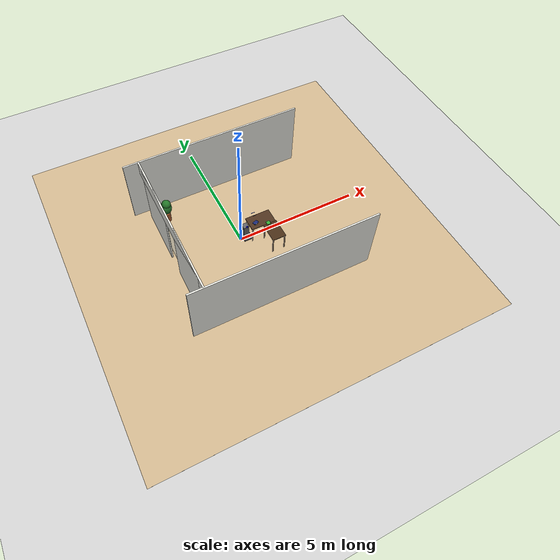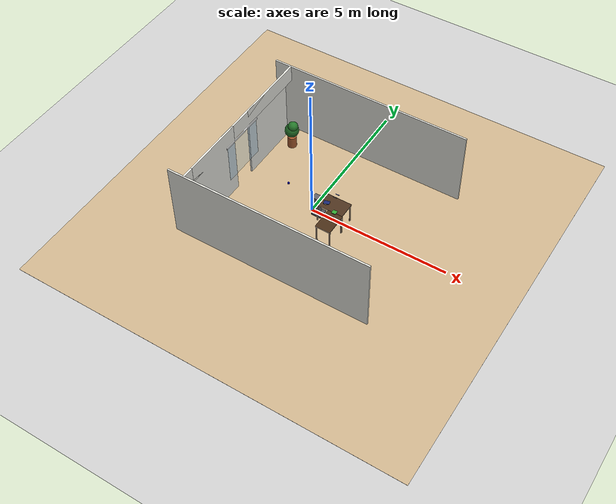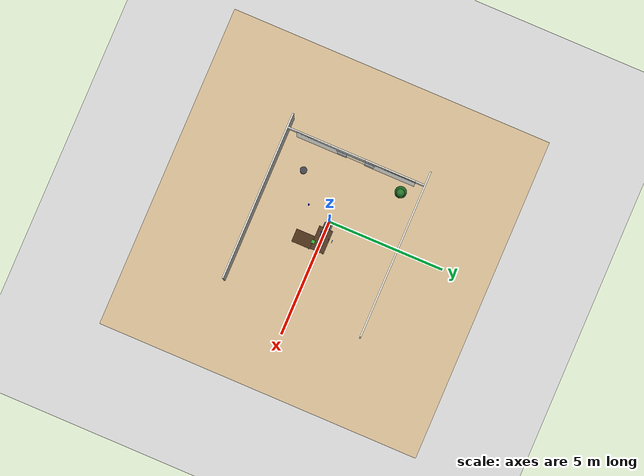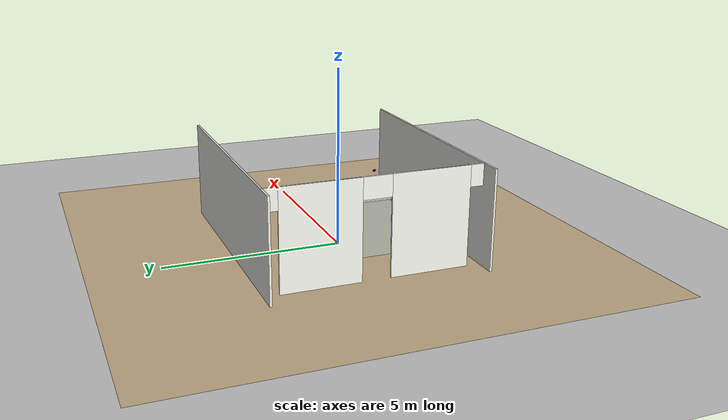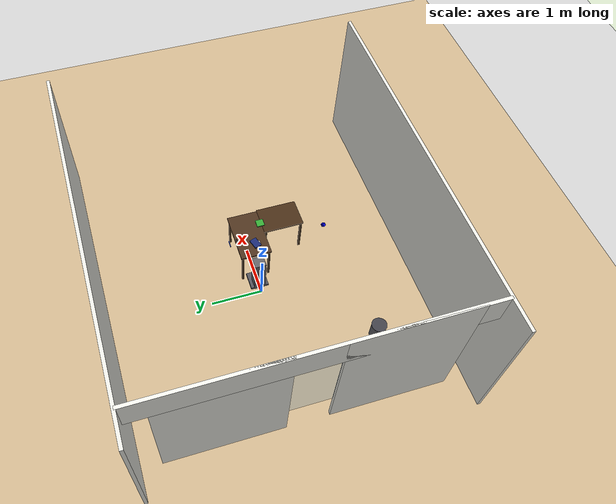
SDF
<sdf version="1.6">
 <world name="office">
  <include><uri>model://sun</uri></include>
  <include><uri>model://ground_plane</uri></include>
  <light name="office_fill" type="point">
   <pose>0.5 0.0 2.4 0 0 0</pose>
   <diffuse>0.38 0.36 0.32 1</diffuse>
   <specular>0.05 0.05 0.05 1</specular>
   <attenuation>
    <range>8</range>
    <constant>0.6</constant>
    <linear>0.05</linear>
    <quadratic>0.002</quadratic>
   </attenuation>
   <cast_shadows>false</cast_shadows>
  </light>
  <plugin name="model_attachment" filename="libboeing_gazebo_model_attachment_plugin_lib.so"/>
  <plugin name="gazebo_ros_state" filename="libgazebo_ros_state.so">
   <ros><namespace>/gazebo</namespace></ros>
   <update_rate>10.0</update_rate>
  </plugin>
  <physics name="default" type="ode">
   <max_step_size>0.001</max_step_size>
   <real_time_factor>1.0</real_time_factor>
   <ode><solver><type>quick</type><iters>50</iters><sor>1.3</sor></solver></ode>
  </physics>
  <model name="floor">
   <static>true</static>
   <pose>0.5 0 0.001 0 0 0</pose>
   <link name="s">
    <visual name="v">
     <geometry><box><size>14 14 0.002</size></box></geometry>
     <material><ambient>0.72 0.62 0.48 1</ambient><diffuse>0.80 0.70 0.55 1</diffuse></material>
    </visual>
   </link>
  </model>
  <model name="room">
   <static>true</static>
   <pose>0.5 0.0 0.0 0 0 0</pose>
   <link name="wback_l">
    <pose>-3.2 -1.5 1.4 0 0 0</pose>
    <collision name="c"><geometry><box><size>0.06 2.2 2.8</size></box></geometry></collision>
    <visual name="v">
     <geometry><box><size>0.06 2.2 2.8</size></box></geometry>
     <material><ambient>0.90 0.90 0.87 1</ambient><diffuse>0.93 0.93 0.90 1</diffuse></material>
    </visual>
   </link>
   <link name="wback_r">
    <pose>-3.2  1.5 1.4 0 0 0</pose>
    <collision name="c"><geometry><box><size>0.06 2.2 2.8</size></box></geometry></collision>
    <visual name="v">
     <geometry><box><size>0.06 2.2 2.8</size></box></geometry>
     <material><ambient>0.90 0.90 0.87 1</ambient><diffuse>0.93 0.93 0.90 1</diffuse></material>
    </visual>
   </link>
   <link name="wback_top">
    <pose>-3.2 0.0 2.50 0 0 0</pose>
    <collision name="c"><geometry><box><size>0.06 6.0 0.60</size></box></geometry></collision>
    <visual name="v">
     <geometry><box><size>0.06 6.0 0.60</size></box></geometry>
     <material><ambient>0.90 0.90 0.87 1</ambient><diffuse>0.93 0.93 0.90 1</diffuse></material>
    </visual>
   </link>
   <link name="window">
    <pose>-3.17 0.0 1.40 0 0 0</pose>
    <visual name="v">
     <geometry><box><size>0.02 1.60 1.50</size></box></geometry>
     <material><ambient>0.55 0.78 0.95 0.30</ambient><diffuse>0.60 0.82 0.98 0.30</diffuse></material>
    </visual>
   </link>
   <link name="winbar">
    <pose>-3.16 0.0 2.15 0 0 0</pose>
    <visual name="v">
     <geometry><box><size>0.03 1.70 0.06</size></box></geometry>
     <material><ambient>0.88 0.88 0.88 1</ambient><diffuse>0.92 0.92 0.92 1</diffuse></material>
    </visual>
   </link>
   <link name="wall_left">
    <pose>-0.2  3.0 1.4 0 0 0</pose>
    <collision name="c"><geometry><box><size>7.2 0.06 2.8</size></box></geometry></collision>
    <visual name="v">
     <geometry><box><size>7.2 0.06 2.8</size></box></geometry>
     <material><ambient>0.88 0.88 0.85 1</ambient><diffuse>0.91 0.91 0.88 1</diffuse></material>
    </visual>
   </link>
   <link name="wall_right">
    <pose>-0.2 -3.0 1.4 0 0 0</pose>
    <collision name="c"><geometry><box><size>7.2 0.06 2.8</size></box></geometry></collision>
    <visual name="v">
     <geometry><box><size>7.2 0.06 2.8</size></box></geometry>
     <material><ambient>0.88 0.88 0.85 1</ambient><diffuse>0.91 0.91 0.88 1</diffuse></material>
    </visual>
   </link>
  </model>
  <model name="robot_pedestal">
   <static>true</static>
   <pose>0.2 0.0 0.0 0 0 0</pose>
   <link name="column">
    <pose>0 0 0.385 0 0 0</pose>
    <collision name="c"><geometry><box><size>0.22 0.22 0.77</size></box></geometry></collision>
    <visual name="v">
     <geometry><box><size>0.22 0.22 0.77</size></box></geometry>
     <material>
      <ambient>0.30 0.30 0.32 1</ambient>
      <diffuse>0.38 0.38 0.40 1</diffuse>
      <specular>0.7 0.7 0.7 1</specular>
     </material>
    </visual>
   </link>
   <link name="base">
    <pose>0.07 0 0.025 0 0 0</pose>
    <collision name="c"><geometry><box><size>0.35 0.35 0.05</size></box></geometry></collision>
    <visual name="v">
     <geometry><box><size>0.35 0.35 0.05</size></box></geometry>
     <material><ambient>0.25 0.25 0.27 1</ambient><diffuse>0.32 0.32 0.35 1</diffuse></material>
    </visual>
   </link>
  </model>
  <model name="table">
   <static>true</static>
   <pose>0.85 0.0 0.0 0 0 0</pose>
   <link name="top">
    <pose>0 0 0.755 0 0 0</pose>
    <collision name="col">
     <geometry><box><size>1.00 0.60 0.03</size></box></geometry>
     <surface><friction><ode><mu>0.7</mu><mu2>0.7</mu2></ode></friction></surface>
    </collision>
    <visual name="vis">
     <geometry><box><size>1.00 0.60 0.03</size></box></geometry>
     <material>
      <ambient>0.22 0.15 0.08 1</ambient>
      <diffuse>0.30 0.20 0.12 1</diffuse>
      <specular>0.12 0.08 0.04 1</specular>
     </material>
    </visual>
   </link>
   <link name="leg_fl">
    <pose>0.46  0.26 0.37 0 0 0</pose>
    <collision name="c"><geometry><box><size>0.04 0.04 0.74</size></box></geometry></collision>
    <visual name="v">
     <geometry><box><size>0.04 0.04 0.74</size></box></geometry>
     <material><ambient>0.18 0.12 0.06 1</ambient><diffuse>0.24 0.16 0.08 1</diffuse></material>
    </visual>
   </link>
   <link name="leg_fr">
    <pose>0.46 -0.26 0.37 0 0 0</pose>
    <collision name="c"><geometry><box><size>0.04 0.04 0.74</size></box></geometry></collision>
    <visual name="v">
     <geometry><box><size>0.04 0.04 0.74</size></box></geometry>
     <material><ambient>0.18 0.12 0.06 1</ambient><diffuse>0.24 0.16 0.08 1</diffuse></material>
    </visual>
   </link>
   <link name="leg_bl">
    <pose>-0.46  0.26 0.37 0 0 0</pose>
    <collision name="c"><geometry><box><size>0.04 0.04 0.74</size></box></geometry></collision>
    <visual name="v">
     <geometry><box><size>0.04 0.04 0.74</size></box></geometry>
     <material><ambient>0.18 0.12 0.06 1</ambient><diffuse>0.24 0.16 0.08 1</diffuse></material>
    </visual>
   </link>
   <link name="leg_br">
    <pose>-0.46 -0.26 0.37 0 0 0</pose>
    <collision name="c"><geometry><box><size>0.04 0.04 0.74</size></box></geometry></collision>
    <visual name="v">
     <geometry><box><size>0.04 0.04 0.74</size></box></geometry>
     <material><ambient>0.18 0.12 0.06 1</ambient><diffuse>0.24 0.16 0.08 1</diffuse></material>
    </visual>
   </link>
  </model>
  <model name="side_table">
   <static>true</static>
   <pose>1.10 -0.70 0.0 0 0 0</pose>
   <link name="top">
    <pose>0 0 0.755 0 0 0</pose>
    <collision name="col">
     <geometry><box><size>0.55 0.80 0.03</size></box></geometry>
     <surface><friction><ode><mu>0.7</mu><mu2>0.7</mu2></ode></friction></surface>
    </collision>
    <visual name="vis">
     <geometry><box><size>0.55 0.80 0.03</size></box></geometry>
     <material>
      <ambient>0.20 0.14 0.07 1</ambient>
      <diffuse>0.28 0.18 0.09 1</diffuse>
      <specular>0.10 0.07 0.03 1</specular>
     </material>
    </visual>
   </link>
   <link name="leg_fl">
    <pose>0.245  0.36 0.37 0 0 0</pose>
    <collision name="c"><geometry><box><size>0.04 0.04 0.74</size></box></geometry></collision>
    <visual name="v">
     <geometry><box><size>0.04 0.04 0.74</size></box></geometry>
     <material><ambient>0.16 0.11 0.06 1</ambient><diffuse>0.22 0.15 0.08 1</diffuse></material>
    </visual>
   </link>
   <link name="leg_fr">
    <pose>0.245 -0.36 0.37 0 0 0</pose>
    <collision name="c"><geometry><box><size>0.04 0.04 0.74</size></box></geometry></collision>
    <visual name="v">
     <geometry><box><size>0.04 0.04 0.74</size></box></geometry>
     <material><ambient>0.16 0.11 0.06 1</ambient><diffuse>0.22 0.15 0.08 1</diffuse></material>
    </visual>
   </link>
   <link name="leg_bl">
    <pose>-0.245  0.36 0.37 0 0 0</pose>
    <collision name="c"><geometry><box><size>0.04 0.04 0.74</size></box></geometry></collision>
    <visual name="v">
     <geometry><box><size>0.04 0.04 0.74</size></box></geometry>
     <material><ambient>0.16 0.11 0.06 1</ambient><diffuse>0.22 0.15 0.08 1</diffuse></material>
    </visual>
   </link>
   <link name="leg_br">
    <pose>-0.245 -0.36 0.37 0 0 0</pose>
    <collision name="c"><geometry><box><size>0.04 0.04 0.74</size></box></geometry></collision>
    <visual name="v">
     <geometry><box><size>0.04 0.04 0.74</size></box></geometry>
     <material><ambient>0.16 0.11 0.06 1</ambient><diffuse>0.22 0.15 0.08 1</diffuse></material>
    </visual>
   </link>
  </model>
  <model name="trash_can">
   <static>true</static>
   <pose>-1.5 -1.8 0.0 0 0 0</pose>
   <link name="body">
    <pose>0 0 0.18 0 0 0</pose>
    <collision name="c">
     <geometry><cylinder><radius>0.14</radius><length>0.36</length></cylinder></geometry>
    </collision>
    <visual name="v">
     <geometry><cylinder><radius>0.14</radius><length>0.36</length></cylinder></geometry>
     <material><ambient>0.30 0.30 0.32 1</ambient><diffuse>0.38 0.38 0.40 1</diffuse></material>
    </visual>
   </link>
   <link name="rim">
    <pose>0 0 0.362 0 0 0</pose>
    <visual name="v">
     <geometry><cylinder><radius>0.145</radius><length>0.008</length></cylinder></geometry>
     <material><ambient>0.20 0.20 0.22 1</ambient><diffuse>0.25 0.25 0.28 1</diffuse></material>
    </visual>
   </link>
  </model>
  <model name="plant">
   <static>true</static>
   <pose>-2.2 2.2 0.0 0 0 0</pose>
   <link name="pot">
    <pose>0 0 0.22 0 0 0</pose>
    <collision name="c">
     <geometry><cylinder><radius>0.16</radius><length>0.44</length></cylinder></geometry>
    </collision>
    <visual name="v">
     <geometry><cylinder><radius>0.16</radius><length>0.44</length></cylinder></geometry>
     <material><ambient>0.55 0.28 0.14 1</ambient><diffuse>0.65 0.35 0.18 1</diffuse></material>
    </visual>
   </link>
   <link name="stem">
    <pose>0 0 0.58 0 0 0</pose>
    <visual name="v">
     <geometry><cylinder><radius>0.025</radius><length>0.28</length></cylinder></geometry>
     <material><ambient>0.18 0.38 0.10 1</ambient><diffuse>0.24 0.48 0.14 1</diffuse></material>
    </visual>
   </link>
   <link name="leaves_lo">
    <pose>0 0 0.72 0 0 0</pose>
    <visual name="v">
     <geometry><sphere><radius>0.25</radius></sphere></geometry>
     <material><ambient>0.08 0.30 0.10 1</ambient><diffuse>0.12 0.40 0.14 1</diffuse></material>
    </visual>
   </link>
   <link name="leaves_hi">
    <pose>0.05 0 0.92 0 0 0</pose>
    <visual name="v">
     <geometry><sphere><radius>0.18</radius></sphere></geometry>
     <material><ambient>0.10 0.36 0.12 1</ambient><diffuse>0.14 0.46 0.16 1</diffuse></material>
    </visual>
   </link>
  </model>
  <model name="notebook">
   <pose>0.62 -0.06 0.783 0 0 0.3</pose>
   <link name="link">
    <inertial>
     <mass>0.12</mass>
     <inertia><ixx>4.6e-5</ixx><ixy>0</ixy><ixz>0</ixz><iyy>6.8e-5</iyy><iyz>0</iyz><izz>1.1e-4</izz></inertia>
    </inertial>
    <collision name="col">
     <geometry><box><size>0.200 0.140 0.020</size></box></geometry>
     <surface><friction><ode><mu>0.6</mu><mu2>0.6</mu2></ode></friction></surface>
    </collision>
    <visual name="vis">
     <geometry><box><size>0.200 0.140 0.020</size></box></geometry>
     <material><ambient>0.08 0.12 0.35 1</ambient><diffuse>0.10 0.16 0.45 1</diffuse></material>
    </visual>
   </link>
  </model>
  <model name="pen">
   <pose>0.74 0.27 0.778 0 1.5708 0</pose>
   <link name="link">
    <inertial>
     <mass>0.015</mass>
     <inertia><ixx>2.4e-6</ixx><ixy>0</ixy><ixz>0</ixz><iyy>2.4e-6</iyy><iyz>0</iyz><izz>4.8e-8</izz></inertia>
    </inertial>
    <collision name="col">
     <geometry><cylinder><radius>0.008</radius><length>0.140</length></cylinder></geometry>
     <surface><friction><ode><mu>0.8</mu><mu2>0.8</mu2></ode></friction></surface>
    </collision>
    <visual name="vis">
     <geometry><cylinder><radius>0.008</radius><length>0.140</length></cylinder></geometry>
     <material>
      <ambient>0.05 0.05 0.08 1</ambient>
      <diffuse>0.08 0.08 0.12 1</diffuse>
      <specular>0.5 0.5 0.5 1</specular>
     </material>
    </visual>
   </link>
  </model>
  <model name="pen2">
   <pose>0.74 0.42 0.778 0 1.5708 0</pose>
   <link name="link">
    <inertial>
     <mass>0.015</mass>
     <inertia><ixx>2.4e-6</ixx><ixy>0</ixy><ixz>0</ixz><iyy>2.4e-6</iyy><iyz>0</iyz><izz>4.8e-8</izz></inertia>
    </inertial>
    <collision name="col">
     <geometry><cylinder><radius>0.008</radius><length>0.140</length></cylinder></geometry>
     <surface><friction><ode><mu>0.8</mu><mu2>0.8</mu2></ode></friction></surface>
    </collision>
    <visual name="vis">
     <geometry><cylinder><radius>0.008</radius><length>0.140</length></cylinder></geometry>
     <material>
      <ambient>0.08 0.20 0.75 1</ambient>
      <diffuse>0.10 0.28 0.90 1</diffuse>
      <specular>0.5 0.5 0.5 1</specular>
     </material>
    </visual>
   </link>
  </model>
  <model name="eraser">
   <pose>0.62 -0.14 0.7775 0 0 0</pose>
   <link name="link">
    <inertial>
     <mass>0.025</mass>
     <inertia><ixx>1.4e-6</ixx><ixy>0</ixy><ixz>0</ixz><iyy>7.8e-6</iyy><iyz>0</iyz><izz>8.8e-6</izz></inertia>
    </inertial>
    <collision name="col">
     <geometry><box><size>0.060 0.025 0.015</size></box></geometry>
     <surface><friction><ode><mu>0.7</mu><mu2>0.7</mu2></ode></friction></surface>
    </collision>
    <visual name="vis">
     <geometry><box><size>0.060 0.025 0.015</size></box></geometry>
     <material><ambient>0.92 0.92 0.90 1</ambient><diffuse>0.96 0.96 0.94 1</diffuse></material>
    </visual>
   </link>
  </model>
  <model name="shelf_b">
   <static>true</static>
   <pose>1.05 -0.28 0.78 0 0 0</pose>
   <link name="surface">
    <collision name="col">
     <geometry><box><size>0.15 0.15 0.02</size></box></geometry>
     <surface><friction><ode><mu>0.8</mu><mu2>0.8</mu2></ode></friction></surface>
    </collision>
    <visual name="vis">
     <geometry><box><size>0.15 0.15 0.02</size></box></geometry>
     <material><ambient>0.20 0.65 0.20 1</ambient><diffuse>0.20 0.65 0.20 1</diffuse></material>
    </visual>
   </link>
  </model>
  <model name="overview_camera">
   <static>true</static>
   <pose>-0.20 -1.00 2.10 0 0.690 0.519</pose>
   <link name="camera_link">
    <visual name="vis">
     <geometry><box><size>0.05 0.05 0.05</size></box></geometry>
     <material><ambient>0 0 0.8 1</ambient><diffuse>0 0 0.8 1</diffuse></material>
    </visual>
    <sensor name="overview_camera" type="camera">
     <update_rate>10</update_rate>
     <camera>
      <horizontal_fov>1.047</horizontal_fov>
      <image><width>1280</width><height>960</height><format>R8G8B8</format></image>
      <clip><near>0.05</near><far>5.0</far></clip>
     </camera>
     <plugin name="overview_camera_plugin" filename="libgazebo_ros_camera.so">
      <ros>
       <remapping>~/image_raw:=/overview_camera/image_raw</remapping>
       <remapping>~/camera_info:=/overview_camera/camera_info</remapping>
      </ros>
      <camera_name>overview_camera</camera_name>
      <frame_name>overview_camera_link</frame_name>
     </plugin>
    </sensor>
   </link>
  </model>
 </world>
</sdf>
